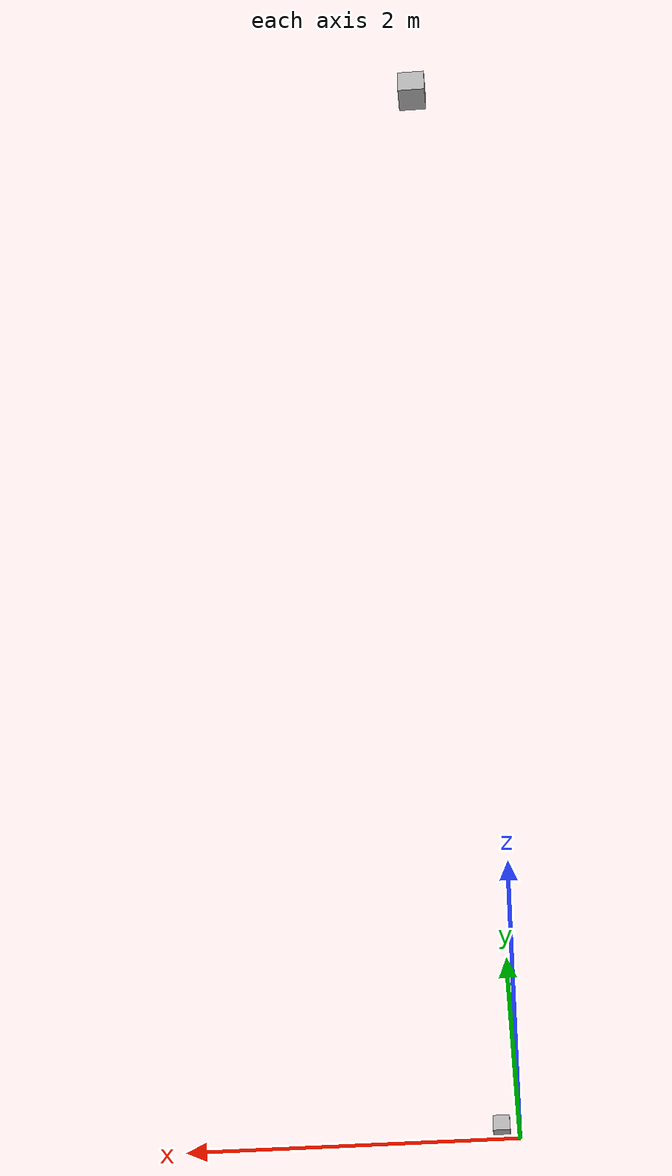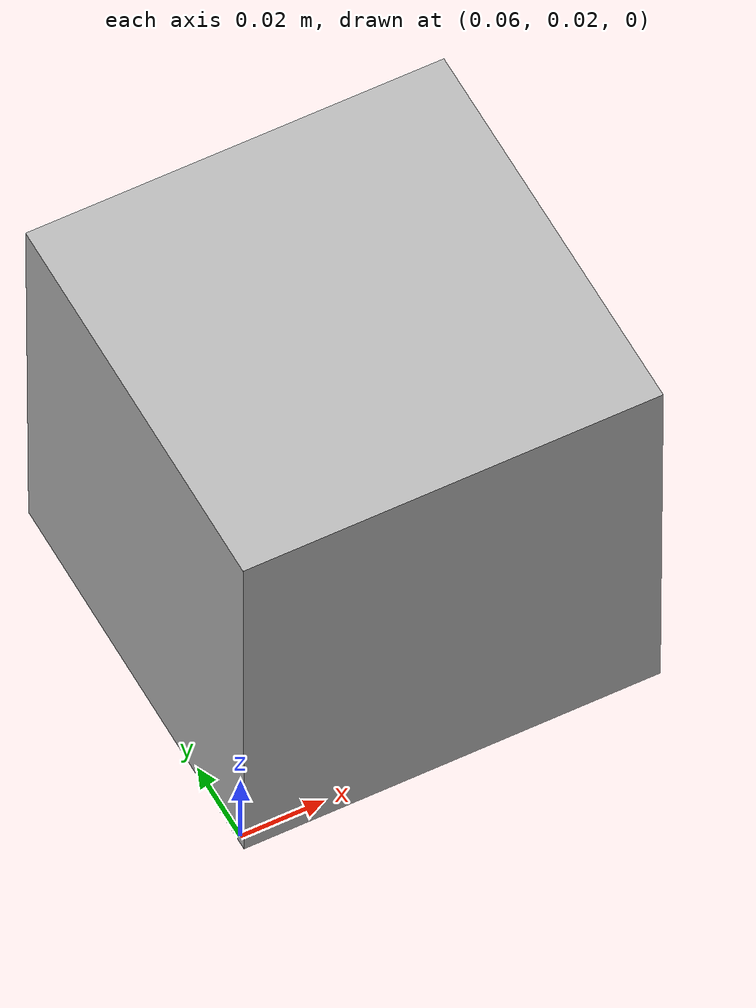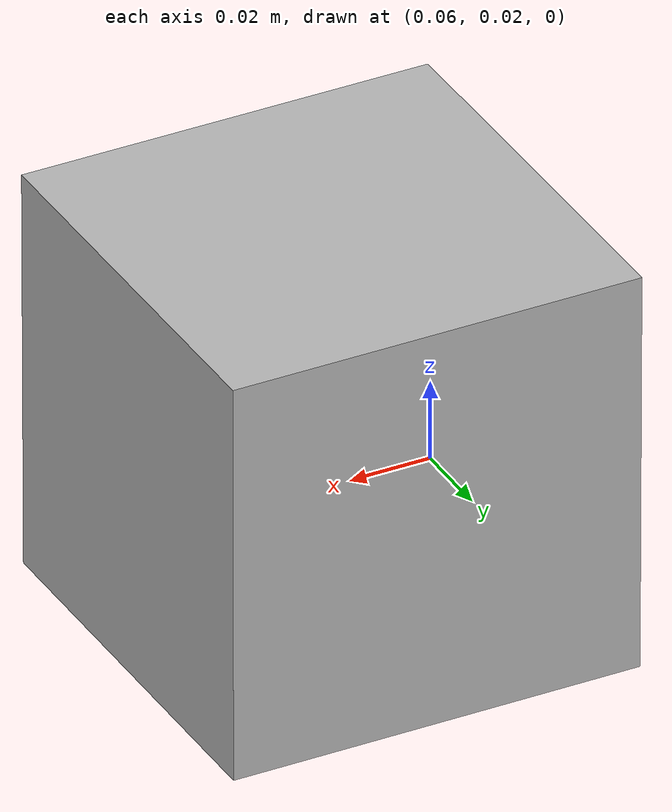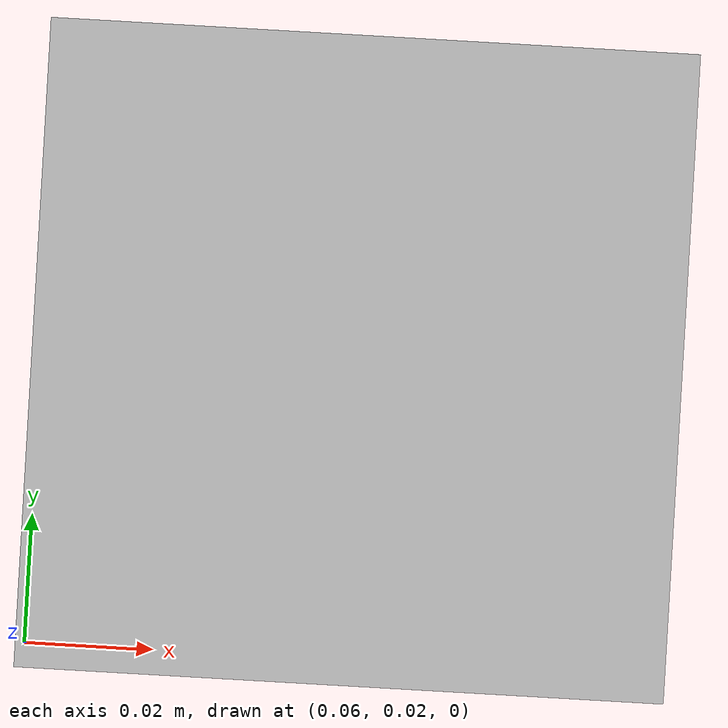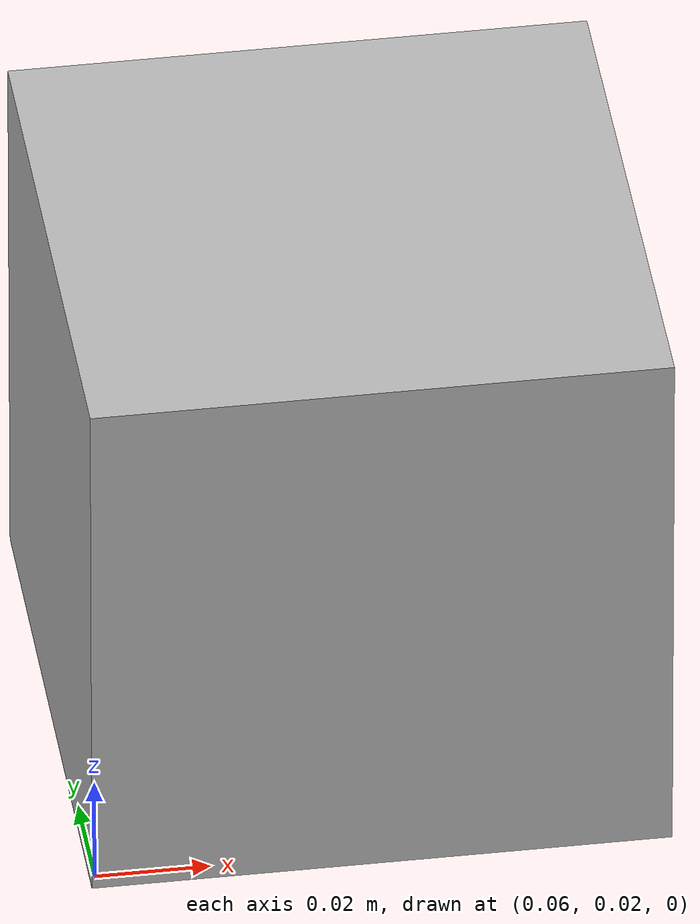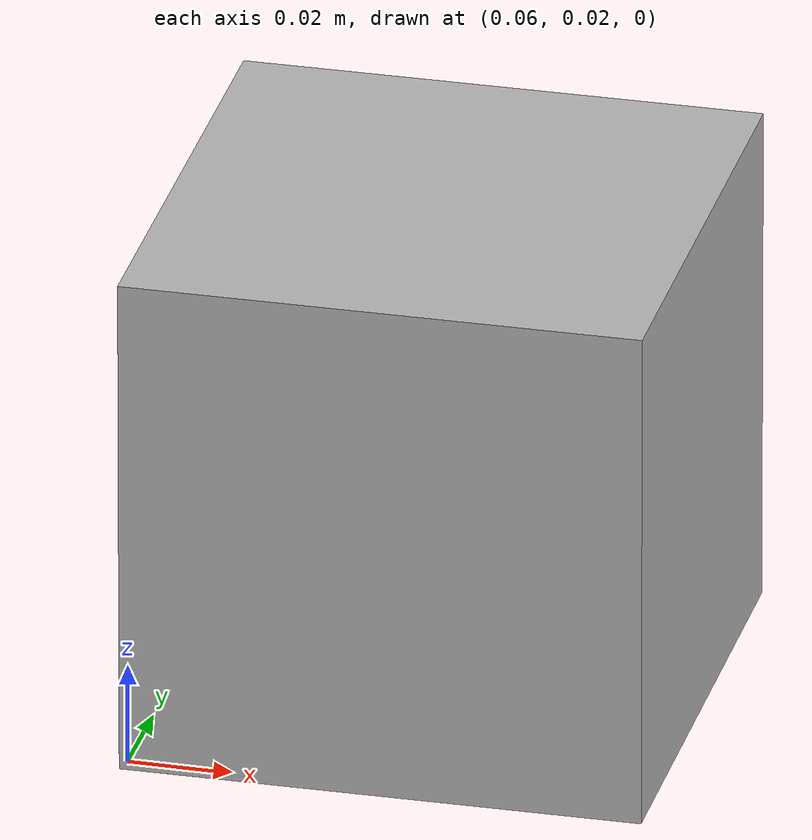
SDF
<?xml version='1.0'?>
<sdf version="1.4">
  <model name='camera_module'>
    <link name='left'>
      <pose frame=''>0 0 0 0 0 0</pose>
      <inertial>
        <mass>0.1</mass>
        <inertia>
          <ixx>0.000166667</ixx>
          <iyy>0.000166667</iyy>
          <izz>0.000166667</izz>
          <ixy>0</ixy>
          <ixz>0</ixz>
          <iyz>0</iyz>
        </inertia>
      </inertial>
      <self_collide>0</self_collide>
      <kinematic>0</kinematic>
      <sensor name='camera' type='camera'>
         <plugin name="camera_controller" filename="libgazebo_ros_camera.so">
          <alwaysOn>true</alwaysOn>
          <updateRate>0.0</updateRate>
          <cameraName>left_camera</cameraName>
          <imageTopicName>image_raw_left</imageTopicName>
          <cameraInfoTopicName>camera_info</cameraInfoTopicName>
          <frameName>camera_link</frameName>
          <hackBaseline>0.07</hackBaseline>
          <distortionK1>0.0</distortionK1>
          <distortionK2>0.0</distortionK2>
          <distortionK3>0.0</distortionK3>
          <distortionT1>0.0</distortionT1>
          <distortionT2>0.0</distortionT2>
        </plugin>
        <camera name='__default__'>
          <horizontal_fov>1.047</horizontal_fov>
          <image>
            <width>640</width>
            <height>480</height>
          </image>
          <clip>
            <near>0.1</near>
            <far>400</far>
          </clip>
        </camera>
        <always_on>1</always_on>
        <update_rate>30</update_rate>
        <visualize>1</visualize>
      </sensor>
      <visual name='visual'>
        <geometry>
          <box>
            <size>0.1 0.1 0.1</size>
          </box>
        </geometry>
        <pose frame=''>0 0 0 0 0 0</pose>
        <cast_shadows>1</cast_shadows>
        <transparency>0</transparency>
      </visual>
      <collision name='collision'>
        <laser_retro>0</laser_retro>
        <max_contacts>10</max_contacts>
        <pose frame=''>0 0 0 0 0 0</pose>
        <geometry>
          <box>
            <size>0.1 0.1 0.1</size>
          </box>
        </geometry>
      </collision>
    </link>

    <link name='right'>
      <pose frame=''>0 8 0 0 0 0</pose>
      <inertial>
        <mass>0.1</mass>
        <inertia>
          <ixx>0.000166667</ixx>
          <iyy>0.000166667</iyy>
          <izz>0.000166667</izz>
          <ixy>0</ixy>
          <ixz>0</ixz>
          <iyz>0</iyz>
        </inertia>
      </inertial>
      <self_collide>0</self_collide>
      <kinematic>0</kinematic>
      <sensor name='camera' type='camera'>
         <plugin name="camera_controller" filename="libgazebo_ros_camera.so">
          <alwaysOn>true</alwaysOn>
          <updateRate>0.0</updateRate>
          <cameraName>right_camera</cameraName>
          <imageTopicName>image_raw_right</imageTopicName>
          <cameraInfoTopicName>camera_info</cameraInfoTopicName>
          <frameName>camera_link</frameName>
          <hackBaseline>0.07</hackBaseline>
          <distortionK1>0.0</distortionK1>
          <distortionK2>0.0</distortionK2>
          <distortionK3>0.0</distortionK3>
          <distortionT1>0.0</distortionT1>
          <distortionT2>0.0</distortionT2>
        </plugin>
        <camera name='__default__'>
          <horizontal_fov>1.047</horizontal_fov>
          <image>
            <width>640</width>
            <height>480</height>
          </image>
          <clip>
            <near>0.1</near>
            <far>400</far>
          </clip>
        </camera>
        <always_on>1</always_on>
        <update_rate>30</update_rate>
        <visualize>1</visualize>
      </sensor>
      <visual name='visual'>
        <geometry>
          <box>
            <size>0.1 0.1 0.1</size>
          </box>
        </geometry>
        <pose frame=''>0 0 0 0 0 0</pose>
        <cast_shadows>1</cast_shadows>
        <transparency>0</transparency>
      </visual>
      <collision name='collision'>
        <laser_retro>0</laser_retro>
        <max_contacts>10</max_contacts>
        <pose frame=''>0 0 0 0 0 0</pose>
        <geometry>
          <box>
            <size>0.1 0.1 0.1</size>
          </box>
        </geometry>
      </collision>
    </link>

    <static>1</static>
    <allow_auto_disable>1</allow_auto_disable>
    <pose frame=''>0.109028 0.066716 0.049992 -8e-06 3.2e-05 -1e-06</pose>
  </model>

</sdf>
